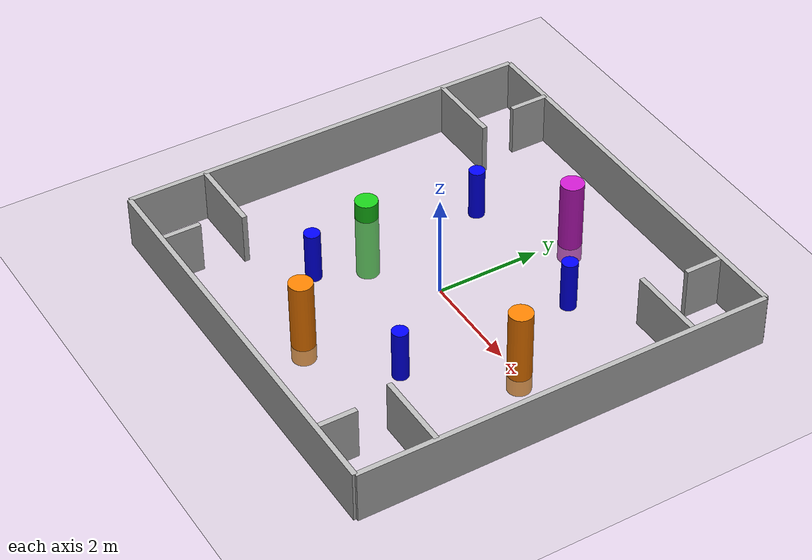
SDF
<?xml version="1.0" ?>
<sdf version="1.6">
  <world name="default">
    <include><uri>model://ground_plane</uri></include>
    <include><uri>model://sun</uri></include>

    <model name="outer_walls">
      <static>true</static>
      <link name="link">
        <collision name="n"><pose>0 4 0.5 0 0 0</pose><geometry><box><size>8 0.1 1</size></box></geometry></collision>
        <visual name="n_v"><pose>0 4 0.5 0 0 0</pose><geometry><box><size>8 0.1 1</size></box></geometry></visual>
        <collision name="s"><pose>0 -4 0.5 0 0 0</pose><geometry><box><size>8 0.1 1</size></box></geometry></collision>
        <visual name="s_v"><pose>0 -4 0.5 0 0 0</pose><geometry><box><size>8 0.1 1</size></box></geometry></visual>
        <collision name="e"><pose>4 0 0.5 0 0 0</pose><geometry><box><size>0.1 8 1</size></box></geometry></collision>
        <visual name="e_v"><pose>4 0 0.5 0 0 0</pose><geometry><box><size>0.1 8 1</size></box></geometry></visual>
        <collision name="w"><pose>-4 0 0.5 0 0 0</pose><geometry><box><size>0.1 8 1</size></box></geometry></collision>
        <visual name="w_v"><pose>-4 0 0.5 0 0 0</pose><geometry><box><size>0.1 8 1</size></box></geometry></visual>
      </link>
    </model>

    <model name="internal_walls">
      <static>true</static>
      <link name="link">
        <collision name="tl_h_c"><pose>-3.25 2.5 0.5 0 0 0</pose><geometry><box><size>1.5 0.1 1</size></box></geometry></collision>
        <visual name="tl_h"><pose>-3.25 2.5 0.5 0 0 0</pose><geometry><box><size>1.5 0.1 1</size></box></geometry></visual>
        <collision name="tl_v_c"><pose>-2.75 3.625 0.5 0 0 0</pose><geometry><box><size>0.1 0.75 1</size></box></geometry></collision>
        <visual name="tl_v"><pose>-2.75 3.625 0.5 0 0 0</pose><geometry><box><size>0.1 0.75 1</size></box></geometry></visual>

        <collision name="tr_h_c"><pose>3.25 2.5 0.5 0 0 0</pose><geometry><box><size>1.5 0.1 1</size></box></geometry></collision>
        <visual name="tr_h"><pose>3.25 2.5 0.5 0 0 0</pose><geometry><box><size>1.5 0.1 1</size></box></geometry></visual>
        <collision name="tr_v_c"><pose>2.75 3.625 0.5 0 0 0</pose><geometry><box><size>0.1 0.75 1</size></box></geometry></collision>
        <visual name="tr_v"><pose>2.75 3.625 0.5 0 0 0</pose><geometry><box><size>0.1 0.75 1</size></box></geometry></visual>

        <collision name="bl_h_c"><pose>-3.25 -2.5 0.5 0 0 0</pose><geometry><box><size>1.5 0.1 1</size></box></geometry></collision>
        <visual name="bl_h"><pose>-3.25 -2.5 0.5 0 0 0</pose><geometry><box><size>1.5 0.1 1</size></box></geometry></visual>
        <collision name="bl_v_c"><pose>-2.75 -3.625 0.5 0 0 0</pose><geometry><box><size>0.1 0.75 1</size></box></geometry></collision>
        <visual name="bl_v"><pose>-2.75 -3.625 0.5 0 0 0</pose><geometry><box><size>0.1 0.75 1</size></box></geometry></visual>

        <collision name="br_h_c"><pose>3.25 -2.5 0.5 0 0 0</pose><geometry><box><size>1.5 0.1 1</size></box></geometry></collision>
        <visual name="br_h"><pose>3.25 -2.5 0.5 0 0 0</pose><geometry><box><size>1.5 0.1 1</size></box></geometry></visual>
        <collision name="br_v_c"><pose>2.75 -3.625 0.5 0 0 0</pose><geometry><box><size>0.1 0.75 1</size></box></geometry></collision>
        <visual name="br_v"><pose>2.75 -3.625 0.5 0 0 0</pose><geometry><box><size>0.1 0.75 1</size></box></geometry></visual>
      </link>
    </model>

    <model name="ob1"><static>true</static><pose>1.5 1.7 0.5 0 0 0</pose><link name="l">
        <collision name="c"><geometry><cylinder><radius>0.15</radius><length>1</length></cylinder></geometry></collision>
        <visual name="v"><geometry><cylinder><radius>0.15</radius><length>1</length></cylinder></geometry><material><ambient>0 0 1 1</ambient></material></visual>
    </link></model>
    <model name="ob2"><static>true</static><pose>-1.5 1.7 0.5 0 0 0</pose><link name="l">
        <collision name="c"><geometry><cylinder><radius>0.15</radius><length>1</length></cylinder></geometry></collision>
        <visual name="v"><geometry><cylinder><radius>0.15</radius><length>1</length></cylinder></geometry><material><ambient>0 0 1 1</ambient></material></visual>
    </link></model>
    <model name="ob3"><static>true</static><pose>-1.5 -1.7 0.5 0 0 0</pose><link name="l">
        <collision name="c"><geometry><cylinder><radius>0.15</radius><length>1</length></cylinder></geometry></collision>
        <visual name="v"><geometry><cylinder><radius>0.15</radius><length>1</length></cylinder></geometry><material><ambient>0 0 1 1</ambient></material></visual>
    </link></model>
    <model name="ob4"><static>true</static><pose>1.5 -1.7 0.5 0 0 0</pose><link name="l">
        <collision name="c"><geometry><cylinder><radius>0.15</radius><length>1</length></cylinder></geometry></collision>
        <visual name="v"><geometry><cylinder><radius>0.15</radius><length>1</length></cylinder></geometry><material><ambient>0 0 1 1</ambient></material></visual>
    </link></model>

    <model name="warehouse_worker_1">
      <static>false</static>
      <pose>2.50 0.04 0.5 0 0 0</pose>
      <link name="link">
        <inertial>
          <mass>25.0</mass>
          <inertia><ixx>2.0</ixx><iyy>2.0</iyy><izz>1.0</izz></inertia>
        </inertial>
        <collision name="collision">
          <geometry><cylinder><radius>0.22</radius><length>1.7</length></cylinder></geometry>
          <surface><friction><ode><mu>0.0</mu><mu2>0.0</mu2></ode></friction></surface>
        </collision>
        <visual name="visual">
          <geometry><cylinder><radius>0.22</radius><length>1.7</length></cylinder></geometry>
          <material><ambient>1.0 0.5 0.0 1</ambient><diffuse>1.0 0.5 0.0 1</diffuse></material>
        </visual>
      </link>
<plugin name="controller_1" filename="libgazebo_ros_planar_move.so">
  <ros>
    <remapping>cmd_vel:=cmd_vel_obstacle_1</remapping>
    <remapping>odom:=odom_obstacle_1</remapping>
  </ros>
  <update_rate>20</update_rate>
  <robot_base_frame>warehouse_worker_1</robot_base_frame>
</plugin>
    </model>

    <model name="warehouse_worker_2">
      <static>false</static>
      <pose>-0.07 -2.70 0.5 0 0 0</pose>
      <link name="link">
        <inertial>
          <mass>25.0</mass>
          <inertia><ixx>2.0</ixx><iyy>2.0</iyy><izz>1.0</izz></inertia>
        </inertial>
        <collision name="collision">
          <geometry><cylinder><radius>0.22</radius><length>1.7</length></cylinder></geometry>
          <surface><friction><ode><mu>0.0</mu><mu2>0.0</mu2></ode></friction></surface>
        </collision>
        <visual name="visual">
          <geometry><cylinder><radius>0.22</radius><length>1.7</length></cylinder></geometry>
          <material><ambient>1.0 0.5 0.0 1</ambient><diffuse>1.0 0.5 0.0 1</diffuse></material>
        </visual>
      </link>
<plugin name="controller_2" filename="libgazebo_ros_planar_move.so">
  <ros>
    <remapping>cmd_vel:=cmd_vel_obstacle_2</remapping>
    <remapping>odom:=odom_obstacle_2</remapping>
  </ros>
  <update_rate>20</update_rate>
  <robot_base_frame>warehouse_worker_2</robot_base_frame>
</plugin>
    </model>

    <model name="warehouse_worker_3">
      <static>false</static>
            <pose>-2.50 -0.04 -0.5 0 0 0</pose> <link name="link">
        <inertial>
          <mass>25.0</mass>
          <inertia><ixx>2.0</ixx><iyy>2.0</iyy><izz>1.0</izz></inertia>
        </inertial>
        <collision name="collision">
          <geometry><cylinder><radius>0.22</radius><length>1.7</length></cylinder></geometry>
          <surface><friction><ode><mu>0.0</mu><mu2>0.0</mu2></ode></friction></surface>
        </collision>
        <visual name="visual">
          <geometry><cylinder><radius>0.22</radius><length>1.7</length></cylinder></geometry>
          <material><ambient>0.1 0.8 0.1 1</ambient><diffuse>0.1 0.8 0.1 1</diffuse></material> </visual>
      </link>
<plugin name="controller_3" filename="libgazebo_ros_planar_move.so">
  <ros>
    <remapping>cmd_vel:=cmd_vel_obstacle_3</remapping>
    <remapping>odom:=odom_obstacle_3</remapping>
  </ros>
  <update_rate>20</update_rate>
  <robot_base_frame>warehouse_worker_3</robot_base_frame>
</plugin>
    </model>

    <model name="warehouse_worker_4">
      <static>false</static>
      <pose>0.07 2.70 0.5 0 0 0</pose> <link name="link">
        <inertial>
          <mass>25.0</mass>
          <inertia><ixx>2.0</ixx><iyy>2.0</iyy><izz>1.0</izz></inertia>
        </inertial>
        <collision name="collision">
          <geometry><cylinder><radius>0.22</radius><length>1.7</length></cylinder></geometry>
          <surface><friction><ode><mu>0.0</mu><mu2>0.0</mu2></ode></friction></surface>
        </collision>
        <visual name="visual">
          <geometry><cylinder><radius>0.22</radius><length>1.7</length></cylinder></geometry>
          <material><ambient>0.8 0.1 0.8 1</ambient><diffuse>0.8 0.1 0.8 1</diffuse></material> </visual>
      </link>
<plugin name="controller_4" filename="libgazebo_ros_planar_move.so">
  <ros>
    <remapping>cmd_vel:=cmd_vel_obstacle_4</remapping>
    <remapping>odom:=odom_obstacle_4</remapping>
  </ros>
  <update_rate>20</update_rate>
  <robot_base_frame>warehouse_worker_4</robot_base_frame>
</plugin>
    </model>

  </world>
</sdf>
